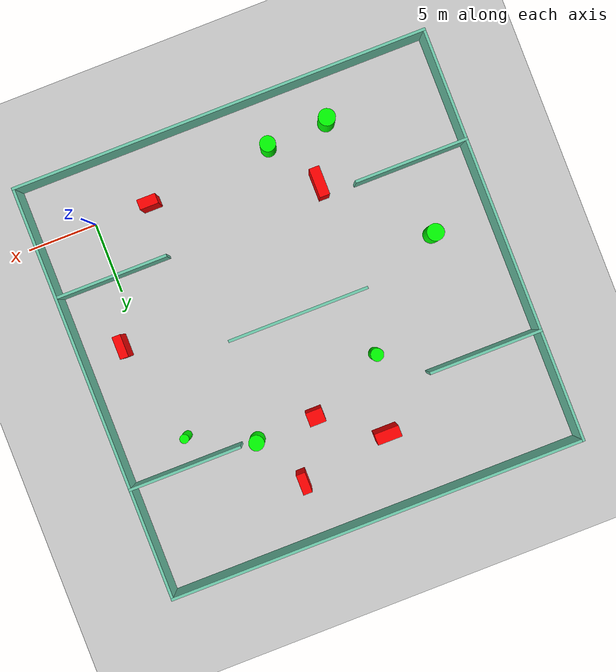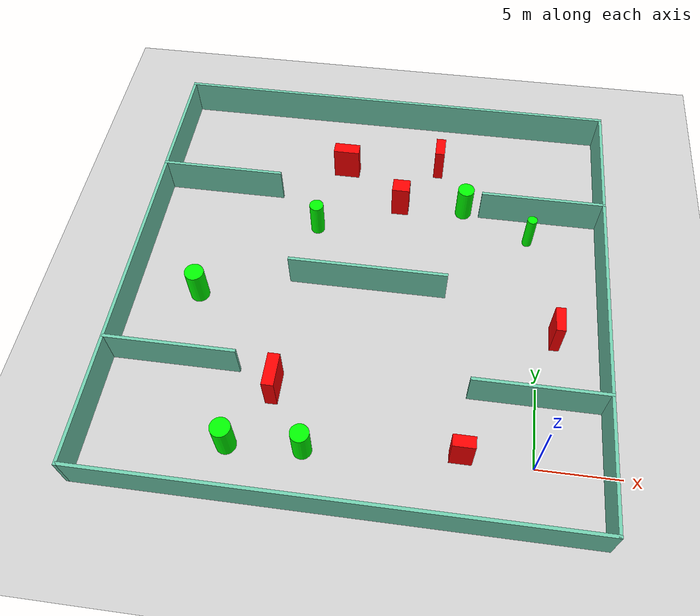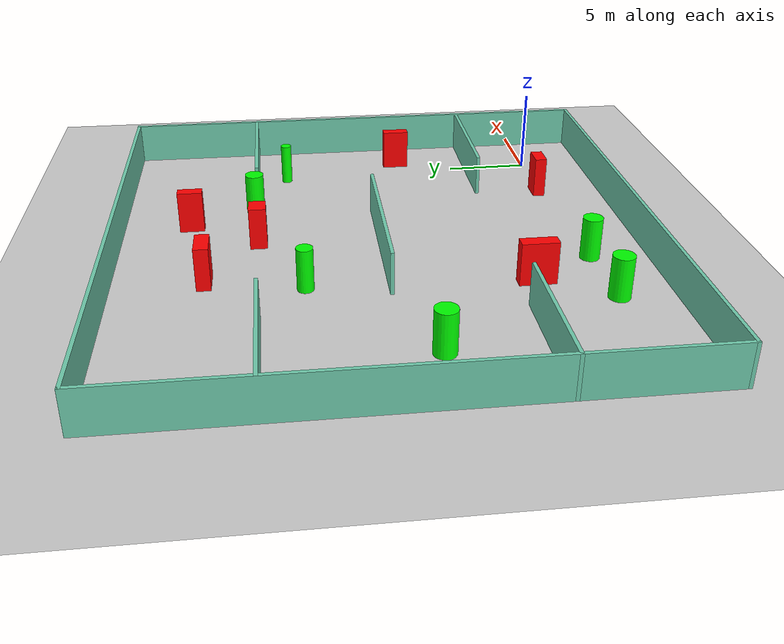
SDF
<sdf version="1.7">
 <world name="default">
  <light name="sun" type="directional">
   <pose>0 0 10 0 -0 0</pose>
   <diffuse>0.8 0.8 0.8 1</diffuse>
   <specular>0.2 0.2 0.2 1</specular>
   <attenuation>
    <range>1000</range>
    <constant>0.9</constant>
    <linear>0.01</linear>
    <quadratic>0.001</quadratic>
   </attenuation>
   <direction>-0.5 0.1 -0.9</direction>
   <spot><inner_angle>0</inner_angle><outer_angle>0</outer_angle><falloff>0</falloff></spot>
  </light>
  <model name="ground_plane">
   <static>1</static>
   <link name="link">
    <collision name="collision">
     <geometry><plane><normal>0 0 1</normal><size>100 100</size></plane></geometry>
     <surface>
      <contact><collide_bitmask>65535</collide_bitmask></contact>
      <friction><ode><mu>100</mu><mu2>50</mu2></ode></friction>
     </surface>
    </collision>
    <visual name="visual">
     <cast_shadows>0</cast_shadows>
     <geometry><plane><normal>0 0 1</normal><size>100 100</size></plane></geometry>
     <material>
      <script><uri>file://media/materials/scripts/gazebo.material</uri><name>Gazebo/Grey</name></script>
     </material>
    </visual>
   </link>
  </model>
  <gravity>0 0 -9.8</gravity>
  <magnetic_field>6e-06 2.3e-05 -4.2e-05</magnetic_field>
  <atmosphere type="adiabatic"/>
  <physics type="ode">
   <max_step_size>0.001</max_step_size>
   <real_time_factor>1</real_time_factor>
   <real_time_update_rate>1000</real_time_update_rate>
  </physics>
  <scene><ambient>0.4 0.4 0.4 1</ambient><background>0.7 0.7 0.7 1</background><shadows>1</shadows></scene>
  <spherical_coordinates>
   <surface_model>EARTH_WGS84</surface_model>
   <latitude_deg>0</latitude_deg>
   <longitude_deg>0</longitude_deg>
   <elevation>0</elevation>
   <heading_deg>0</heading_deg>
  </spherical_coordinates>
  <model name="my_base_walls">
   <link name="Wall_10">
    <collision name="Wall_10_Collision">
     <geometry><box><size>8.2 0.2 2.5</size></box></geometry>
     <pose>0 0 1.25 0 -0 0</pose>
    </collision>
    <visual name="Wall_10_Visual">
     <pose>0 0 1.25 0 -0 0</pose>
     <geometry><box><size>8.2 0.2 2.5</size></box></geometry>
     <material>
      <script><uri>file://media/materials/scripts/gazebo.material</uri><name>Gazebo/Grey</name></script>
      <ambient>0.435294 0.796078 0.67451 1</ambient>
     </material>
     <meta><layer>0</layer></meta>
    </visual>
    <pose>-11 -7 0 0 -0 0</pose>
   </link>
   <link name="Wall_12">
    <collision name="Wall_12_Collision">
     <geometry><box><size>8.2 0.2 2.5</size></box></geometry>
     <pose>0 0 1.25 0 -0 0</pose>
    </collision>
    <visual name="Wall_12_Visual">
     <pose>0 0 1.25 0 -0 0</pose>
     <geometry><box><size>8.2 0.2 2.5</size></box></geometry>
     <material>
      <script><uri>file://media/materials/scripts/gazebo.material</uri><name>Gazebo/Grey</name></script>
      <ambient>0.435294 0.796078 0.67451 1</ambient>
     </material>
     <meta><layer>0</layer></meta>
    </visual>
    <pose>-11 7 0 0 -0 0</pose>
   </link>
   <link name="Wall_14">
    <collision name="Wall_14_Collision">
     <geometry><box><size>8.2 0.2 2.5</size></box></geometry>
     <pose>0 0 1.25 0 -0 0</pose>
    </collision>
    <visual name="Wall_14_Visual">
     <pose>0 0 1.25 0 -0 0</pose>
     <geometry><box><size>8.2 0.2 2.5</size></box></geometry>
     <material>
      <script><uri>file://media/materials/scripts/gazebo.material</uri><name>Gazebo/Grey</name></script>
      <ambient>0.435294 0.796078 0.67451 1</ambient>
     </material>
     <meta><layer>0</layer></meta>
    </visual>
    <pose>11 7 0 0 -0 3.14159</pose>
   </link>
   <link name="Wall_16">
    <collision name="Wall_16_Collision">
     <geometry><box><size>10.2 0.2 2.5</size></box></geometry>
     <pose>0 0 1.25 0 -0 0</pose>
    </collision>
    <visual name="Wall_16_Visual">
     <pose>0 0 1.25 0 -0 0</pose>
     <geometry><box><size>10.2 0.2 2.5</size></box></geometry>
     <material>
      <script><uri>file://media/materials/scripts/gazebo.material</uri><name>Gazebo/Grey</name></script>
      <ambient>0.435294 0.796078 0.67451 1</ambient>
     </material>
     <meta><layer>0</layer></meta>
    </visual>
    <pose>0 0 0 0 -0 3.14159</pose>
   </link>
   <link name="Wall_2">
    <collision name="Wall_2_Collision">
     <geometry><box><size>30.2 0.2 2.5</size></box></geometry>
     <pose>0 0 1.25 0 -0 0</pose>
    </collision>
    <visual name="Wall_2_Visual">
     <pose>0 0 1.25 0 -0 0</pose>
     <geometry><box><size>30.2 0.2 2.5</size></box></geometry>
     <material>
      <script><uri>file://media/materials/scripts/gazebo.material</uri><name>Gazebo/Grey</name></script>
      <ambient>0.435294 0.796078 0.67451 1</ambient>
     </material>
     <meta><layer>0</layer></meta>
    </visual>
    <pose>0 -15 0 0 -0 3.14159</pose>
   </link>
   <link name="Wall_3">
    <collision name="Wall_3_Collision">
     <geometry><box><size>30.2 0.2 2.5</size></box></geometry>
     <pose>0 0 1.25 0 -0 0</pose>
    </collision>
    <visual name="Wall_3_Visual">
     <pose>0 0 1.25 0 -0 0</pose>
     <geometry><box><size>30.2 0.2 2.5</size></box></geometry>
     <material>
      <script><uri>file://media/materials/scripts/gazebo.material</uri><name>Gazebo/Grey</name></script>
      <ambient>0.435294 0.796078 0.67451 1</ambient>
     </material>
     <meta><layer>0</layer></meta>
    </visual>
    <pose>-15 0 0 0 -0 1.5708</pose>
   </link>
   <link name="Wall_4">
    <collision name="Wall_4_Collision">
     <geometry><box><size>30.2 0.2 2.5</size></box></geometry>
     <pose>0 0 1.25 0 -0 0</pose>
    </collision>
    <visual name="Wall_4_Visual">
     <pose>0 0 1.25 0 -0 0</pose>
     <geometry><box><size>30.2 0.2 2.5</size></box></geometry>
     <material>
      <script><uri>file://media/materials/scripts/gazebo.material</uri><name>Gazebo/Grey</name></script>
      <ambient>0.435294 0.796078 0.67451 1</ambient>
     </material>
     <meta><layer>0</layer></meta>
    </visual>
    <pose>0 15 0 0 -0 0</pose>
   </link>
   <link name="Wall_6">
    <collision name="Wall_6_Collision">
     <geometry><box><size>30.2 0.2 2.5</size></box></geometry>
     <pose>0 0 1.25 0 -0 0</pose>
    </collision>
    <visual name="Wall_6_Visual">
     <pose>0 0 1.25 0 -0 0</pose>
     <geometry><box><size>30.2 0.2 2.5</size></box></geometry>
     <material>
      <script><uri>file://media/materials/scripts/gazebo.material</uri><name>Gazebo/Grey</name></script>
      <ambient>0.435294 0.796078 0.67451 1</ambient>
     </material>
     <meta><layer>0</layer></meta>
    </visual>
    <pose>15 0 0 0 -0 1.5708</pose>
   </link>
   <link name="Wall_8">
    <collision name="Wall_8_Collision">
     <geometry><box><size>8.2 0.2 2.5</size></box></geometry>
     <pose>0 0 1.25 0 -0 0</pose>
    </collision>
    <visual name="Wall_8_Visual">
     <pose>0 0 1.25 0 -0 0</pose>
     <geometry><box><size>8.2 0.2 2.5</size></box></geometry>
     <material>
      <script><uri>file://media/materials/scripts/gazebo.material</uri><name>Gazebo/Grey</name></script>
      <ambient>0.435294 0.796078 0.67451 1</ambient>
     </material>
     <meta><layer>0</layer></meta>
    </visual>
    <pose>11 -7 0 0 -0 3.14159</pose>
   </link>
   <static>1</static>
   <pose>-11 11 0 0 -0 0</pose>
  </model>
  <model name="cylinder1">
   <static>1</static>
   <link name="link">
    <inertial>
     <mass>1</mass>
     <inertia><ixx>0.5</ixx><ixy>0</ixy><ixz>0</ixz><iyy>0.5</iyy><iyz>0</iyz><izz>1</izz></inertia>
    </inertial>
    <collision name="collision">
     <geometry><cylinder><radius>0.56373295636225</radius><length>2.5</length></cylinder></geometry>
    </collision>
    <visual name="visual">
     <geometry><cylinder><radius>0.56373295636225</radius><length>2.5</length></cylinder></geometry>
     <material>
      <ambient>0 1 0 1</ambient>
      <diffuse>0 1 0 1</diffuse>
      <specular>0.1 0.1 0.1 1</specular>
      <emissive>0 0 0 0</emissive>
     </material>
    </visual>
   </link>
   <pose>-13.264323293551039 -0.5859469907775776 1.25 0 0 0</pose>
  </model>
  <model name="cylinder2">
   <static>1</static>
   <link name="link">
    <inertial>
     <mass>1</mass>
     <inertia><ixx>0.5</ixx><ixy>0</ixy><ixz>0</ixz><iyy>0.5</iyy><iyz>0</iyz><izz>1</izz></inertia>
    </inertial>
    <collision name="collision">
     <geometry><cylinder><radius>0.6070000751512847</radius><length>2.5</length></cylinder></geometry>
    </collision>
    <visual name="visual">
     <geometry><cylinder><radius>0.6070000751512847</radius><length>2.5</length></cylinder></geometry>
     <material>
      <ambient>0 1 0 1</ambient>
      <diffuse>0 1 0 1</diffuse>
      <specular>0.1 0.1 0.1 1</specular>
      <emissive>0 0 0 0</emissive>
     </material>
    </visual>
   </link>
   <pose>-17.682105030865902 -0.8133426664155841 1.25 0 0 0</pose>
  </model>
  <model name="cylinder3">
   <static>1</static>
   <link name="link">
    <inertial>
     <mass>1</mass>
     <inertia><ixx>0.5</ixx><ixy>0</ixy><ixz>0</ixz><iyy>0.5</iyy><iyz>0</iyz><izz>1</izz></inertia>
    </inertial>
    <collision name="collision">
     <geometry><cylinder><radius>0.3227685384609196</radius><length>2.5</length></cylinder></geometry>
    </collision>
    <visual name="visual">
     <geometry><cylinder><radius>0.3227685384609196</radius><length>2.5</length></cylinder></geometry>
     <material>
      <ambient>0 1 0 1</ambient>
      <diffuse>0 1 0 1</diffuse>
      <specular>0.1 0.1 0.1 1</specular>
      <emissive>0 0 0 0</emissive>
     </material>
    </visual>
   </link>
   <pose>-0.7066447886539144 16.103096892862954 1.25 0 0 0</pose>
  </model>
  <model name="cylinder4">
   <static>1</static>
   <link name="link">
    <inertial>
     <mass>1</mass>
     <inertia><ixx>0.5</ixx><ixy>0</ixy><ixz>0</ixz><iyy>0.5</iyy><iyz>0</iyz><izz>1</izz></inertia>
    </inertial>
    <collision name="collision">
     <geometry><cylinder><radius>0.46194245990086064</radius><length>2.5</length></cylinder></geometry>
    </collision>
    <visual name="visual">
     <geometry><cylinder><radius>0.46194245990086064</radius><length>2.5</length></cylinder></geometry>
     <material>
      <ambient>0 1 0 1</ambient>
      <diffuse>0 1 0 1</diffuse>
      <specular>0.1 0.1 0.1 1</specular>
      <emissive>0 0 0 0</emissive>
     </material>
    </visual>
   </link>
   <pose>-15.021025720744671 15.508679535029117 1.25 0 0 0</pose>
  </model>
  <model name="cylinder5">
   <static>1</static>
   <link name="link">
    <inertial>
     <mass>1</mass>
     <inertia><ixx>0.5</ixx><ixy>0</ixy><ixz>0</ixz><iyy>0.5</iyy><iyz>0</iyz><izz>1</izz></inertia>
    </inertial>
    <collision name="collision">
     <geometry><cylinder><radius>0.5479020957484574</radius><length>2.5</length></cylinder></geometry>
    </collision>
    <visual name="visual">
     <geometry><cylinder><radius>0.5479020957484574</radius><length>2.5</length></cylinder></geometry>
     <material>
      <ambient>0 1 0 1</ambient>
      <diffuse>0 1 0 1</diffuse>
      <specular>0.1 0.1 0.1 1</specular>
      <emissive>0 0 0 0</emissive>
     </material>
    </visual>
   </link>
   <pose>-5.1788087634467725 18.146139844755574 1.25 0 0 0</pose>
  </model>
  <model name="cylinder6">
   <static>1</static>
   <link name="link">
    <inertial>
     <mass>1</mass>
     <inertia><ixx>0.5</ixx><ixy>0</ixy><ixz>0</ixz><iyy>0.5</iyy><iyz>0</iyz><izz>1</izz></inertia>
    </inertial>
    <collision name="collision">
     <geometry><cylinder><radius>0.6135031417494092</radius><length>2.5</length></cylinder></geometry>
    </collision>
    <visual name="visual">
     <geometry><cylinder><radius>0.6135031417494092</radius><length>2.5</length></cylinder></geometry>
     <material>
      <ambient>0 1 0 1</ambient>
      <diffuse>0 1 0 1</diffuse>
      <specular>0.1 0.1 0.1 1</specular>
      <emissive>0 0 0 0</emissive>
     </material>
    </visual>
   </link>
   <pose>-21.750137966161066 9.167754110318253 1.25 0 0 0</pose>
  </model>
  <model name="box1">
   <static>1</static>
   <link name="link">
    <inertial>
     <mass>1</mass>
     <inertia><ixx>0.083</ixx><ixy>0</ixy><ixz>0</ixz><iyy>0.083</iyy><iyz>0</iyz><izz>0.083</izz></inertia>
    </inertial>
    <collision name="collision">
     <geometry><box><size>0.6491982430792367 1.4397418516443055 2.5</size></box></geometry>
    </collision>
    <visual name="visual">
     <geometry><box><size>0.6491982430792367 1.4397418516443055 2.5</size></box></geometry>
     <material>
      <ambient>1 0 0 1</ambient>
      <diffuse>1 0 0 1</diffuse>
      <specular>0.1 0.1 0.1 1</specular>
      <emissive>0 0 0 0</emissive>
     </material>
    </visual>
    <sensor name="my_contact" type="contact">
     <contact><collision>box_collision</collision><topic>__default_topic__</topic></contact>
    </sensor>
   </link>
   <pose>-7.2041906301776955 21.904341529741988 1.25 0 0 0</pose>
  </model>
  <model name="box2">
   <static>1</static>
   <link name="link">
    <inertial>
     <mass>1</mass>
     <inertia><ixx>0.083</ixx><ixy>0</ixy><ixz>0</ixz><iyy>0.083</iyy><iyz>0</iyz><izz>0.083</izz></inertia>
    </inertial>
    <collision name="collision">
     <geometry><box><size>0.6029183452605602 1.6184665819637585 2.5</size></box></geometry>
    </collision>
    <visual name="visual">
     <geometry><box><size>0.6029183452605602 1.6184665819637585 2.5</size></box></geometry>
     <material>
      <ambient>1 0 0 1</ambient>
      <diffuse>1 0 0 1</diffuse>
      <specular>0.1 0.1 0.1 1</specular>
      <emissive>0 0 0 0</emissive>
     </material>
    </visual>
    <sensor name="my_contact" type="contact">
     <contact><collision>box_collision</collision><topic>__default_topic__</topic></contact>
    </sensor>
   </link>
   <pose>1.1007736478266636 8.681745301024387 1.25 0 0 0</pose>
  </model>
  <model name="box3">
   <static>1</static>
   <link name="link">
    <inertial>
     <mass>1</mass>
     <inertia><ixx>0.083</ixx><ixy>0</ixy><ixz>0</ixz><iyy>0.083</iyy><iyz>0</iyz><izz>0.083</izz></inertia>
    </inertial>
    <collision name="collision">
     <geometry><box><size>1.3392460553023684 0.7116533082908933 2.5</size></box></geometry>
    </collision>
    <visual name="visual">
     <geometry><box><size>1.3392460553023684 0.7116533082908933 2.5</size></box></geometry>
     <material>
      <ambient>1 0 0 1</ambient>
      <diffuse>1 0 0 1</diffuse>
      <specular>0.1 0.1 0.1 1</specular>
      <emissive>0 0 0 0</emissive>
     </material>
    </visual>
    <sensor name="my_contact" type="contact">
     <contact><collision>box_collision</collision><topic>__default_topic__</topic></contact>
    </sensor>
   </link>
   <pose>-4.21424083938056 0.12060272178311315 1.25 0 0 0</pose>
  </model>
  <model name="box4">
   <static>1</static>
   <link name="link">
    <inertial>
     <mass>1</mass>
     <inertia><ixx>0.083</ixx><ixy>0</ixy><ixz>0</ixz><iyy>0.083</iyy><iyz>0</iyz><izz>0.083</izz></inertia>
    </inertial>
    <collision name="collision">
     <geometry><box><size>0.7386897992680378 2.0816875365242122 2.5</size></box></geometry>
    </collision>
    <visual name="visual">
     <geometry><box><size>0.7386897992680378 2.0816875365242122 2.5</size></box></geometry>
     <material>
      <ambient>1 0 0 1</ambient>
      <diffuse>1 0 0 1</diffuse>
      <specular>0.1 0.1 0.1 1</specular>
      <emissive>0 0 0 0</emissive>
     </material>
    </visual>
    <sensor name="my_contact" type="contact">
     <contact><collision>box_collision</collision><topic>__default_topic__</topic></contact>
    </sensor>
   </link>
   <pose>-15.619451611022344 3.0896317211376694 1.25 0 0 0</pose>
  </model>
  <model name="box5">
   <static>1</static>
   <link name="link">
    <inertial>
     <mass>1</mass>
     <inertia><ixx>0.083</ixx><ixy>0</ixy><ixz>0</ixz><iyy>0.083</iyy><iyz>0</iyz><izz>0.083</izz></inertia>
    </inertial>
    <collision name="collision">
     <geometry><box><size>1.162289728696892 0.9915320898371757 2.5</size></box></geometry>
    </collision>
    <visual name="visual">
     <geometry><box><size>1.162289728696892 0.9915320898371757 2.5</size></box></geometry>
     <material>
      <ambient>1 0 0 1</ambient>
      <diffuse>1 0 0 1</diffuse>
      <specular>0.1 0.1 0.1 1</specular>
      <emissive>0 0 0 0</emissive>
     </material>
    </visual>
    <sensor name="my_contact" type="contact">
     <contact><collision>box_collision</collision><topic>__default_topic__</topic></contact>
    </sensor>
   </link>
   <pose>-9.578981080282578 17.972318215012653 1.25 0 0 0</pose>
  </model>
  <model name="box6">
   <static>1</static>
   <link name="link">
    <inertial>
     <mass>1</mass>
     <inertia><ixx>0.083</ixx><ixy>0</ixy><ixz>0</ixz><iyy>0.083</iyy><iyz>0</iyz><izz>0.083</izz></inertia>
    </inertial>
    <collision name="collision">
     <geometry><box><size>1.7629328077583444 0.7973840982337981 2.5</size></box></geometry>
    </collision>
    <visual name="visual">
     <geometry><box><size>1.7629328077583444 0.7973840982337981 2.5</size></box></geometry>
     <material>
      <ambient>1 0 0 1</ambient>
      <diffuse>1 0 0 1</diffuse>
      <specular>0.1 0.1 0.1 1</specular>
      <emissive>0 0 0 0</emissive>
     </material>
    </visual>
    <sensor name="my_contact" type="contact">
     <contact><collision>box_collision</collision><topic>__default_topic__</topic></contact>
    </sensor>
   </link>
   <pose>-13.733900397780541 20.894556703930967 1.25 0 0 0</pose>
  </model>
 </world>
</sdf>
